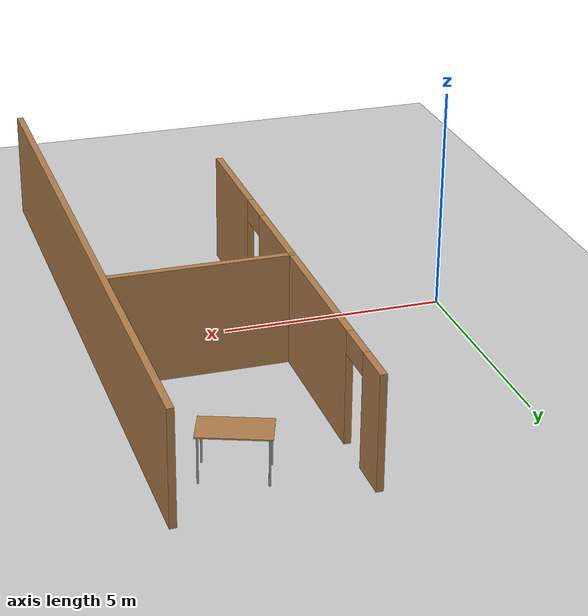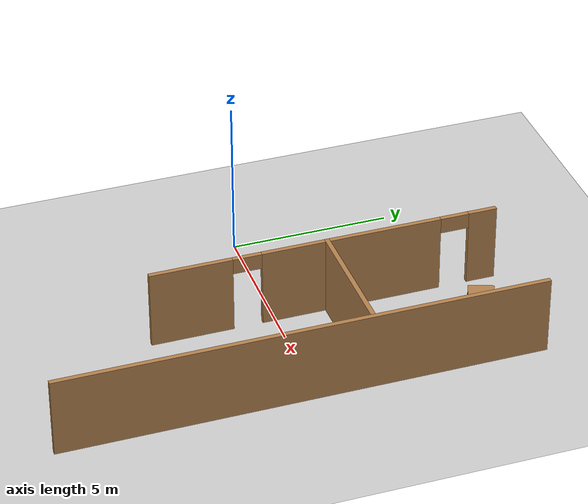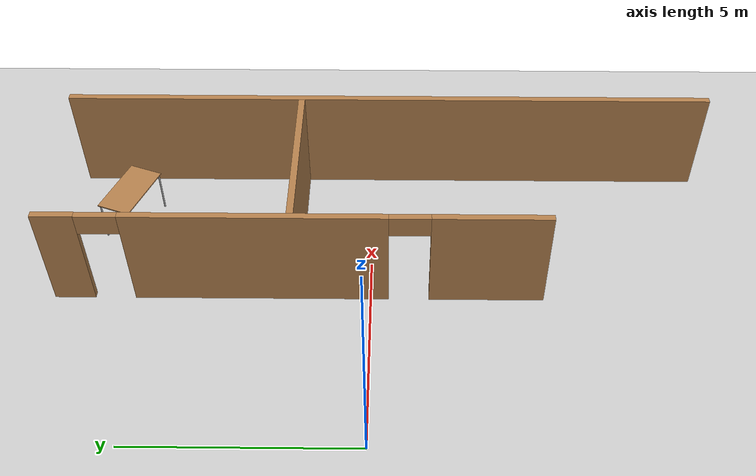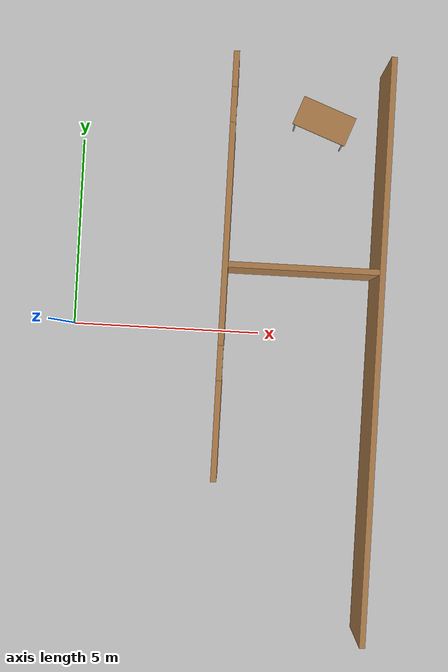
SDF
<sdf version="1.6">
 <world name="default">
  <model name="ground_plane">
   <static>1</static>
   <link name="link">
    <collision name="collision">
     <geometry><plane><normal>0 0 1</normal><size>100 100</size></plane></geometry>
     <surface>
      <contact><collide_bitmask>65535</collide_bitmask></contact>
      <friction><ode><mu>100</mu><mu2>50</mu2></ode></friction>
     </surface>
    </collision>
    <visual name="visual">
     <cast_shadows>0</cast_shadows>
     <geometry><plane><normal>0 0 1</normal><size>100 100</size></plane></geometry>
     <material>
      <script><uri>file://media/materials/scripts/gazebo.material</uri><name>Gazebo/Grey</name></script>
     </material>
    </visual>
   </link>
  </model>
  <model name="table_2">
   <static>1</static>
   <link name="link">
    <collision name="surface">
     <pose>0 0 1 0 -0 0</pose>
     <geometry><box><size>1.5 0.8 0.03</size></box></geometry>
     <surface><friction><ode><mu>0.6</mu><mu2>0.6</mu2></ode></friction></surface>
    </collision>
    <visual name="visual1">
     <pose>0 0 1 0 -0 0</pose>
     <geometry><box><size>1.5 0.8 0.03</size></box></geometry>
     <material>
      <script><uri>file://media/materials/scripts/gazebo.material</uri><name>Gazebo/Wood</name></script>
     </material>
    </visual>
    <collision name="front_left_leg">
     <pose>0.68 0.38 0.5 0 -0 0</pose>
     <geometry><cylinder><radius>0.02</radius><length>1</length></cylinder></geometry>
    </collision>
    <visual name="front_left_leg">
     <pose>0.68 0.38 0.5 0 -0 0</pose>
     <geometry><cylinder><radius>0.02</radius><length>1</length></cylinder></geometry>
     <material>
      <script><uri>file://media/materials/scripts/gazebo.material</uri><name>Gazebo/Grey</name></script>
     </material>
    </visual>
    <collision name="front_right_leg">
     <pose>0.68 -0.38 0.5 0 -0 0</pose>
     <geometry><cylinder><radius>0.02</radius><length>1</length></cylinder></geometry>
    </collision>
    <visual name="front_right_leg">
     <pose>0.68 -0.38 0.5 0 -0 0</pose>
     <geometry><cylinder><radius>0.02</radius><length>1</length></cylinder></geometry>
     <material>
      <script><uri>file://media/materials/scripts/gazebo.material</uri><name>Gazebo/Grey</name></script>
     </material>
    </visual>
    <collision name="back_right_leg">
     <pose>-0.68 -0.38 0.5 0 -0 0</pose>
     <geometry><cylinder><radius>0.02</radius><length>1</length></cylinder></geometry>
    </collision>
    <visual name="back_right_leg">
     <pose>-0.68 -0.38 0.5 0 -0 0</pose>
     <geometry><cylinder><radius>0.02</radius><length>1</length></cylinder></geometry>
     <material>
      <script><uri>file://media/materials/scripts/gazebo.material</uri><name>Gazebo/Grey</name></script>
     </material>
    </visual>
    <collision name="back_left_leg">
     <pose>-0.68 0.38 0.5 0 -0 0</pose>
     <geometry><cylinder><radius>0.02</radius><length>1</length></cylinder></geometry>
    </collision>
    <visual name="back_left_leg">
     <pose>-0.68 0.38 0.5 0 -0 0</pose>
     <geometry><cylinder><radius>0.02</radius><length>1</length></cylinder></geometry>
     <material>
      <script><uri>file://media/materials/scripts/gazebo.material</uri><name>Gazebo/Grey</name></script>
     </material>
    </visual>
   </link>
   <pose>6.43262 5.68773 0 0 0 -0.358912</pose>
  </model>
  <model name="my_building_0">
   <link name="Wall_13">
    <pose>1.94306 1.96963 0 0 -0 1.5708</pose>
    <inertial>
     <mass>1</mass>
     <inertia><ixx>1</ixx><ixy>0</ixy><ixz>0</ixz><iyy>1</iyy><iyz>0</iyz><izz>1</izz></inertia>
    </inertial>
    <visual name="Wall_13_Visual_1">
     <pose>0.82864 0 1.25 0 -0 0</pose>
     <geometry><box><size>5.66297 0.15 2.5</size></box></geometry>
     <material>
      <script><uri>file://media/materials/scripts/gazebo.material</uri><name>Gazebo/Wood</name></script>
      <ambient>1 1 1 1</ambient>
      <diffuse>1 1 1 1</diffuse>
      <specular>0.2 0.2 0.2 1</specular>
      <emissive>0 0 0 1</emissive>
      <shader type="vertex"><normal_map>__default__</normal_map></shader>
     </material>
     <meta><layer>0</layer></meta>
    </visual>
    <visual name="ModelPreview_1::Wall_13::visual_11">
     <pose>4.11013 0 2.25 0 -0 0</pose>
     <geometry><box><size>0.9 0.15 0.5</size></box></geometry>
     <material>
      <script><uri>file://media/materials/scripts/gazebo.material</uri><name>Gazebo/Wood</name></script>
      <ambient>1 1 1 1</ambient>
      <diffuse>1 1 1 1</diffuse>
      <specular>0.2 0.2 0.2 1</specular>
      <emissive>0 0 0 1</emissive>
      <shader type="vertex"><normal_map>__default__</normal_map></shader>
     </material>
     <meta><layer>0</layer></meta>
    </visual>
    <visual name="ModelPreview_1::Wall_13::visual_9">
     <pose>4.11013 0 2.25 0 -0 0</pose>
     <geometry><box><size>0.9 0.15 0.5</size></box></geometry>
     <material>
      <script><uri>file://media/materials/scripts/gazebo.material</uri><name>Gazebo/Wood</name></script>
      <ambient>1 1 1 1</ambient>
      <diffuse>1 1 1 1</diffuse>
      <specular>0.2 0.2 0.2 1</specular>
      <emissive>0 0 0 1</emissive>
      <shader type="vertex"><normal_map>__default__</normal_map></shader>
     </material>
     <meta><layer>0</layer></meta>
    </visual>
    <visual name="ModelPreview_1::Wall_13::visual_12">
     <pose>4.11013 0 2.25 0 -0 0</pose>
     <geometry><box><size>0.9 0.15 0.5</size></box></geometry>
     <material>
      <script><uri>file://media/materials/scripts/gazebo.material</uri><name>Gazebo/Wood</name></script>
      <ambient>1 1 1 1</ambient>
      <diffuse>1 1 1 1</diffuse>
      <specular>0.2 0.2 0.2 1</specular>
      <emissive>0 0 0 1</emissive>
      <shader type="vertex"><normal_map>__default__</normal_map></shader>
     </material>
     <meta><layer>0</layer></meta>
    </visual>
    <visual name="ModelPreview_1::Wall_13::visual_10">
     <pose>4.11013 0 2.25 0 -0 0</pose>
     <geometry><box><size>0.9 0.15 0.5</size></box></geometry>
     <material>
      <script><uri>file://media/materials/scripts/gazebo.material</uri><name>Gazebo/Wood</name></script>
      <ambient>1 1 1 1</ambient>
      <diffuse>1 1 1 1</diffuse>
      <specular>0.2 0.2 0.2 1</specular>
      <emissive>0 0 0 1</emissive>
      <shader type="vertex"><normal_map>__default__</normal_map></shader>
     </material>
     <meta><layer>0</layer></meta>
    </visual>
    <visual name="ModelPreview_1::Wall_13::visual_13">
     <pose>4.11013 0 2.25 0 -0 0</pose>
     <geometry><box><size>0.9 0.15 0.5</size></box></geometry>
     <material>
      <script><uri>file://media/materials/scripts/gazebo.material</uri><name>Gazebo/Wood</name></script>
      <ambient>1 1 1 1</ambient>
      <diffuse>1 1 1 1</diffuse>
      <specular>0.2 0.2 0.2 1</specular>
      <emissive>0 0 0 1</emissive>
      <shader type="vertex"><normal_map>__default__</normal_map></shader>
     </material>
     <meta><layer>0</layer></meta>
    </visual>
    <visual name="ModelPreview_1::Wall_13::visual_6">
     <pose>4.11013 0 2.25 0 -0 0</pose>
     <geometry><box><size>0.9 0.15 0.5</size></box></geometry>
     <material>
      <script><uri>file://media/materials/scripts/gazebo.material</uri><name>Gazebo/Wood</name></script>
      <ambient>1 1 1 1</ambient>
      <diffuse>1 1 1 1</diffuse>
      <specular>0.2 0.2 0.2 1</specular>
      <emissive>0 0 0 1</emissive>
      <shader type="vertex"><normal_map>__default__</normal_map></shader>
     </material>
     <meta><layer>0</layer></meta>
    </visual>
    <visual name="ModelPreview_1::Wall_13::visual_5">
     <pose>4.11013 0 2.25 0 -0 0</pose>
     <geometry><box><size>0.9 0.15 0.5</size></box></geometry>
     <material>
      <script><uri>file://media/materials/scripts/gazebo.material</uri><name>Gazebo/Wood</name></script>
      <ambient>1 1 1 1</ambient>
      <diffuse>1 1 1 1</diffuse>
      <specular>0.2 0.2 0.2 1</specular>
      <emissive>0 0 0 1</emissive>
      <shader type="vertex"><normal_map>__default__</normal_map></shader>
     </material>
     <meta><layer>0</layer></meta>
    </visual>
    <visual name="ModelPreview_1::Wall_13::visual_7">
     <pose>4.11013 0 2.25 0 -0 0</pose>
     <geometry><box><size>0.9 0.15 0.5</size></box></geometry>
     <material>
      <script><uri>file://media/materials/scripts/gazebo.material</uri><name>Gazebo/Wood</name></script>
      <ambient>1 1 1 1</ambient>
      <diffuse>1 1 1 1</diffuse>
      <specular>0.2 0.2 0.2 1</specular>
      <emissive>0 0 0 1</emissive>
      <shader type="vertex"><normal_map>__default__</normal_map></shader>
     </material>
     <meta><layer>0</layer></meta>
    </visual>
    <visual name="ModelPreview_1::Wall_13::visual_8">
     <pose>4.11013 0 2.25 0 -0 0</pose>
     <geometry><box><size>0.9 0.15 0.5</size></box></geometry>
     <material>
      <script><uri>file://media/materials/scripts/gazebo.material</uri><name>Gazebo/Wood</name></script>
      <ambient>1 1 1 1</ambient>
      <diffuse>1 1 1 1</diffuse>
      <specular>0.2 0.2 0.2 1</specular>
      <emissive>0 0 0 1</emissive>
      <shader type="vertex"><normal_map>__default__</normal_map></shader>
     </material>
     <meta><layer>0</layer></meta>
    </visual>
    <visual name="Wall_13_Visual_0">
     <pose>-4.18642 0 1.25 0 -0 0</pose>
     <geometry><box><size>2.56715 0.15 2.5</size></box></geometry>
     <material>
      <script><uri>file://media/materials/scripts/gazebo.material</uri><name>Gazebo/Wood</name></script>
      <ambient>1 1 1 1</ambient>
      <diffuse>1 1 1 1</diffuse>
      <specular>0.2 0.2 0.2 1</specular>
      <emissive>0 0 0 1</emissive>
      <shader type="vertex"><normal_map>__default__</normal_map></shader>
     </material>
     <meta><layer>0</layer></meta>
    </visual>
    <visual name="Wall_13_Visual_2">
     <pose>5.01506 0 1.25 0 -0 0</pose>
     <geometry><box><size>0.909873 0.15 2.5</size></box></geometry>
     <material>
      <script><uri>file://media/materials/scripts/gazebo.material</uri><name>Gazebo/Wood</name></script>
      <ambient>1 1 1 1</ambient>
      <diffuse>1 1 1 1</diffuse>
      <specular>0.2 0.2 0.2 1</specular>
      <emissive>0 0 0 1</emissive>
      <shader type="vertex"><normal_map>__default__</normal_map></shader>
     </material>
     <meta><layer>0</layer></meta>
    </visual>
    <visual name="Wall_13_Visual_3">
     <pose>-2.45285 0 2.25 0 -0 0</pose>
     <geometry><box><size>0.9 0.15 0.5</size></box></geometry>
     <material>
      <script><uri>file://media/materials/scripts/gazebo.material</uri><name>Gazebo/Wood</name></script>
      <ambient>1 1 1 1</ambient>
      <diffuse>1 1 1 1</diffuse>
      <specular>0.2 0.2 0.2 1</specular>
      <emissive>0 0 0 1</emissive>
      <shader type="vertex"><normal_map>__default__</normal_map></shader>
     </material>
     <meta><layer>0</layer></meta>
    </visual>
    <visual name="Wall_13_Visual_4">
     <pose>4.11013 0 2.25 0 -0 0</pose>
     <geometry><box><size>0.9 0.15 0.5</size></box></geometry>
     <material>
      <script><uri>file://media/materials/scripts/gazebo.material</uri><name>Gazebo/Wood</name></script>
      <ambient>1 1 1 1</ambient>
      <diffuse>1 1 1 1</diffuse>
      <specular>0.2 0.2 0.2 1</specular>
      <emissive>0 0 0 1</emissive>
      <shader type="vertex"><normal_map>__default__</normal_map></shader>
     </material>
     <meta><layer>0</layer></meta>
    </visual>
    <collision name="Wall_13_Collision_0">
     <pose>-4.18642 0 1.25 0 -0 0</pose>
     <geometry><box><size>2.56715 0.15 2.5</size></box></geometry>
     <surface>
      <friction>
       <ode><mu>1</mu><mu2>1</mu2><fdir1>0 0 0</fdir1><slip1>0</slip1><slip2>0</slip2></ode>
       <torsional>
        <coefficient>1</coefficient>
        <patch_radius>0</patch_radius>
        <surface_radius>0</surface_radius>
        <use_patch_radius>1</use_patch_radius>
        <ode><slip>0</slip></ode>
       </torsional>
      </friction>
      <bounce><restitution_coefficient>0</restitution_coefficient><threshold>1e+06</threshold></bounce>
      <contact>
       <collide_without_contact>0</collide_without_contact>
       <collide_without_contact_bitmask>1</collide_without_contact_bitmask>
       <collide_bitmask>1</collide_bitmask>
       <ode>
        <soft_cfm>0</soft_cfm>
        <soft_erp>0.2</soft_erp>
        <kp>1e+13</kp>
        <kd>1</kd>
        <max_vel>0.01</max_vel>
        <min_depth>0</min_depth>
       </ode>
       <bullet>
        <split_impulse>1</split_impulse>
        <split_impulse_penetration_threshold>-0.01</split_impulse_penetration_threshold>
        <soft_cfm>0</soft_cfm>
        <soft_erp>0.2</soft_erp>
        <kp>1e+13</kp>
        <kd>1</kd>
       </bullet>
      </contact>
     </surface>
    </collision>
    <collision name="Wall_13_Collision_1">
     <pose>0.82864 0 1.25 0 -0 0</pose>
     <geometry><box><size>5.66297 0.15 2.5</size></box></geometry>
     <surface>
      <friction>
       <ode><mu>1</mu><mu2>1</mu2><fdir1>0 0 0</fdir1><slip1>0</slip1><slip2>0</slip2></ode>
       <torsional>
        <coefficient>1</coefficient>
        <patch_radius>0</patch_radius>
        <surface_radius>0</surface_radius>
        <use_patch_radius>1</use_patch_radius>
        <ode><slip>0</slip></ode>
       </torsional>
      </friction>
      <bounce><restitution_coefficient>0</restitution_coefficient><threshold>1e+06</threshold></bounce>
      <contact>
       <collide_without_contact>0</collide_without_contact>
       <collide_without_contact_bitmask>1</collide_without_contact_bitmask>
       <collide_bitmask>1</collide_bitmask>
       <ode>
        <soft_cfm>0</soft_cfm>
        <soft_erp>0.2</soft_erp>
        <kp>1e+13</kp>
        <kd>1</kd>
        <max_vel>0.01</max_vel>
        <min_depth>0</min_depth>
       </ode>
       <bullet>
        <split_impulse>1</split_impulse>
        <split_impulse_penetration_threshold>-0.01</split_impulse_penetration_threshold>
        <soft_cfm>0</soft_cfm>
        <soft_erp>0.2</soft_erp>
        <kp>1e+13</kp>
        <kd>1</kd>
       </bullet>
      </contact>
     </surface>
    </collision>
    <collision name="Wall_13_Collision_2">
     <pose>5.01506 0 1.25 0 -0 0</pose>
     <geometry><box><size>0.909873 0.15 2.5</size></box></geometry>
     <surface>
      <friction>
       <ode><mu>1</mu><mu2>1</mu2><fdir1>0 0 0</fdir1><slip1>0</slip1><slip2>0</slip2></ode>
       <torsional>
        <coefficient>1</coefficient>
        <patch_radius>0</patch_radius>
        <surface_radius>0</surface_radius>
        <use_patch_radius>1</use_patch_radius>
        <ode><slip>0</slip></ode>
       </torsional>
      </friction>
      <bounce><restitution_coefficient>0</restitution_coefficient><threshold>1e+06</threshold></bounce>
      <contact>
       <collide_without_contact>0</collide_without_contact>
       <collide_without_contact_bitmask>1</collide_without_contact_bitmask>
       <collide_bitmask>1</collide_bitmask>
       <ode>
        <soft_cfm>0</soft_cfm>
        <soft_erp>0.2</soft_erp>
        <kp>1e+13</kp>
        <kd>1</kd>
        <max_vel>0.01</max_vel>
        <min_depth>0</min_depth>
       </ode>
       <bullet>
        <split_impulse>1</split_impulse>
        <split_impulse_penetration_threshold>-0.01</split_impulse_penetration_threshold>
        <soft_cfm>0</soft_cfm>
        <soft_erp>0.2</soft_erp>
        <kp>1e+13</kp>
        <kd>1</kd>
       </bullet>
      </contact>
     </surface>
    </collision>
    <collision name="Wall_13_Collision_3">
     <pose>-2.45285 0 2.25 0 -0 0</pose>
     <geometry><box><size>0.9 0.15 0.5</size></box></geometry>
     <surface>
      <friction>
       <ode><mu>1</mu><mu2>1</mu2><fdir1>0 0 0</fdir1><slip1>0</slip1><slip2>0</slip2></ode>
       <torsional>
        <coefficient>1</coefficient>
        <patch_radius>0</patch_radius>
        <surface_radius>0</surface_radius>
        <use_patch_radius>1</use_patch_radius>
        <ode><slip>0</slip></ode>
       </torsional>
      </friction>
      <bounce><restitution_coefficient>0</restitution_coefficient><threshold>1e+06</threshold></bounce>
      <contact>
       <collide_without_contact>0</collide_without_contact>
       <collide_without_contact_bitmask>1</collide_without_contact_bitmask>
       <collide_bitmask>1</collide_bitmask>
       <ode>
        <soft_cfm>0</soft_cfm>
        <soft_erp>0.2</soft_erp>
        <kp>1e+13</kp>
        <kd>1</kd>
        <max_vel>0.01</max_vel>
        <min_depth>0</min_depth>
       </ode>
       <bullet>
        <split_impulse>1</split_impulse>
        <split_impulse_penetration_threshold>-0.01</split_impulse_penetration_threshold>
        <soft_cfm>0</soft_cfm>
        <soft_erp>0.2</soft_erp>
        <kp>1e+13</kp>
        <kd>1</kd>
       </bullet>
      </contact>
     </surface>
    </collision>
    <collision name="Wall_13_Collision_4">
     <pose>4.11013 0 2.25 0 -0 0</pose>
     <geometry><box><size>0.9 0.15 0.5</size></box></geometry>
     <surface>
      <friction>
       <ode><mu>1</mu><mu2>1</mu2><fdir1>0 0 0</fdir1><slip1>0</slip1><slip2>0</slip2></ode>
       <torsional>
        <coefficient>1</coefficient>
        <patch_radius>0</patch_radius>
        <surface_radius>0</surface_radius>
        <use_patch_radius>1</use_patch_radius>
        <ode><slip>0</slip></ode>
       </torsional>
      </friction>
      <bounce><restitution_coefficient>0</restitution_coefficient><threshold>1e+06</threshold></bounce>
      <contact>
       <collide_without_contact>0</collide_without_contact>
       <collide_without_contact_bitmask>1</collide_without_contact_bitmask>
       <collide_bitmask>1</collide_bitmask>
       <ode>
        <soft_cfm>0</soft_cfm>
        <soft_erp>0.2</soft_erp>
        <kp>1e+13</kp>
        <kd>1</kd>
        <max_vel>0.01</max_vel>
        <min_depth>0</min_depth>
       </ode>
       <bullet>
        <split_impulse>1</split_impulse>
        <split_impulse_penetration_threshold>-0.01</split_impulse_penetration_threshold>
        <soft_cfm>0</soft_cfm>
        <soft_erp>0.2</soft_erp>
        <kp>1e+13</kp>
        <kd>1</kd>
       </bullet>
      </contact>
     </surface>
    </collision>
   </link>
   <link name="Wall_17">
    <pose>3.87106 2.03163 0 0 -0 0</pose>
    <inertial>
     <mass>1</mass>
     <inertia><ixx>1</ixx><ixy>0</ixy><ixz>0</ixz><iyy>1</iyy><iyz>0</iyz><izz>1</izz></inertia>
    </inertial>
    <visual name="ModelPreview_1::Wall_17::visual_1">
     <pose>0 0 1.25 0 -0 0</pose>
     <geometry><box><size>4 0.15 2.5</size></box></geometry>
     <material>
      <script><uri>file://media/materials/scripts/gazebo.material</uri><name>Gazebo/Wood</name></script>
      <ambient>1 1 1 1</ambient>
      <diffuse>1 1 1 1</diffuse>
      <specular>0.2 0.2 0.2 1</specular>
      <emissive>0 0 0 1</emissive>
      <shader type="vertex"><normal_map>__default__</normal_map></shader>
     </material>
     <meta><layer>0</layer></meta>
    </visual>
    <visual name="ModelPreview_1::Wall_17::visual_2">
     <pose>0 0 1.25 0 -0 0</pose>
     <geometry><box><size>4 0.15 2.5</size></box></geometry>
     <material>
      <script><uri>file://media/materials/scripts/gazebo.material</uri><name>Gazebo/Wood</name></script>
      <ambient>1 1 1 1</ambient>
      <diffuse>1 1 1 1</diffuse>
      <specular>0.2 0.2 0.2 1</specular>
      <emissive>0 0 0 1</emissive>
      <shader type="vertex"><normal_map>__default__</normal_map></shader>
     </material>
     <meta><layer>0</layer></meta>
    </visual>
    <visual name="Wall_17_Visual">
     <pose>0 0 1.25 0 -0 0</pose>
     <geometry><box><size>4 0.15 2.5</size></box></geometry>
     <material>
      <script><uri>file://media/materials/scripts/gazebo.material</uri><name>Gazebo/White</name></script>
      <ambient>1 1 1 1</ambient>
      <diffuse>1 1 1 1</diffuse>
      <specular>0.2 0.2 0.2 1</specular>
      <emissive>0 0 0 1</emissive>
      <shader type="vertex"><normal_map>__default__</normal_map></shader>
     </material>
     <meta><layer>0</layer></meta>
    </visual>
    <collision name="Wall_17_Collision">
     <pose>0 0 1.25 0 -0 0</pose>
     <geometry><box><size>4 0.15 2.5</size></box></geometry>
     <surface>
      <friction>
       <ode><mu>1</mu><mu2>1</mu2><fdir1>0 0 0</fdir1><slip1>0</slip1><slip2>0</slip2></ode>
       <torsional>
        <coefficient>1</coefficient>
        <patch_radius>0</patch_radius>
        <surface_radius>0</surface_radius>
        <use_patch_radius>1</use_patch_radius>
        <ode><slip>0</slip></ode>
       </torsional>
      </friction>
      <bounce><restitution_coefficient>0</restitution_coefficient><threshold>1e+06</threshold></bounce>
      <contact>
       <collide_without_contact>0</collide_without_contact>
       <collide_without_contact_bitmask>1</collide_without_contact_bitmask>
       <collide_bitmask>1</collide_bitmask>
       <ode>
        <soft_cfm>0</soft_cfm>
        <soft_erp>0.2</soft_erp>
        <kp>1e+13</kp>
        <kd>1</kd>
        <max_vel>0.01</max_vel>
        <min_depth>0</min_depth>
       </ode>
       <bullet>
        <split_impulse>1</split_impulse>
        <split_impulse_penetration_threshold>-0.01</split_impulse_penetration_threshold>
        <soft_cfm>0</soft_cfm>
        <soft_erp>0.2</soft_erp>
        <kp>1e+13</kp>
        <kd>1</kd>
       </bullet>
      </contact>
     </surface>
    </collision>
   </link>
   <link name="Wall_4">
    <pose>5.94294 0 0 0 -0 1.5708</pose>
    <inertial>
     <mass>1</mass>
     <inertia><ixx>1</ixx><ixy>0</ixy><ixz>0</ixz><iyy>1</iyy><iyz>0</iyz><izz>1</izz></inertia>
    </inertial>
    <visual name="Wall_4_Visual">
     <pose>0 0 1.25 0 -0 0</pose>
     <geometry><box><size>15 0.15 2.5</size></box></geometry>
     <material>
      <script><uri>file://media/materials/scripts/gazebo.material</uri><name>Gazebo/Wood</name></script>
      <ambient>1 1 1 1</ambient>
      <diffuse>1 1 1 1</diffuse>
      <specular>0.2 0.2 0.2 1</specular>
      <emissive>0 0 0 1</emissive>
      <shader type="pixel"><normal_map>__default__</normal_map></shader>
     </material>
     <meta><layer>0</layer></meta>
    </visual>
    <collision name="Wall_4_Collision">
     <pose>0 0 1.25 0 -0 0</pose>
     <geometry><box><size>15 0.15 2.5</size></box></geometry>
     <surface>
      <friction>
       <ode><mu>1</mu><mu2>1</mu2><fdir1>0 0 0</fdir1><slip1>0</slip1><slip2>0</slip2></ode>
       <torsional>
        <coefficient>1</coefficient>
        <patch_radius>0</patch_radius>
        <surface_radius>0</surface_radius>
        <use_patch_radius>1</use_patch_radius>
        <ode><slip>0</slip></ode>
       </torsional>
      </friction>
      <bounce><restitution_coefficient>0</restitution_coefficient><threshold>1e+06</threshold></bounce>
      <contact>
       <collide_without_contact>0</collide_without_contact>
       <collide_without_contact_bitmask>1</collide_without_contact_bitmask>
       <collide_bitmask>1</collide_bitmask>
       <ode>
        <soft_cfm>0</soft_cfm>
        <soft_erp>0.2</soft_erp>
        <kp>1e+13</kp>
        <kd>1</kd>
        <max_vel>0.01</max_vel>
        <min_depth>0</min_depth>
       </ode>
       <bullet>
        <split_impulse>1</split_impulse>
        <split_impulse_penetration_threshold>-0.01</split_impulse_penetration_threshold>
        <soft_cfm>0</soft_cfm>
        <soft_erp>0.2</soft_erp>
        <kp>1e+13</kp>
        <kd>1</kd>
       </bullet>
      </contact>
     </surface>
    </collision>
   </link>
   <static>1</static>
   <pose>2.08113 -0.36477 0 0 -0 0</pose>
  </model>
 </world>
</sdf>
